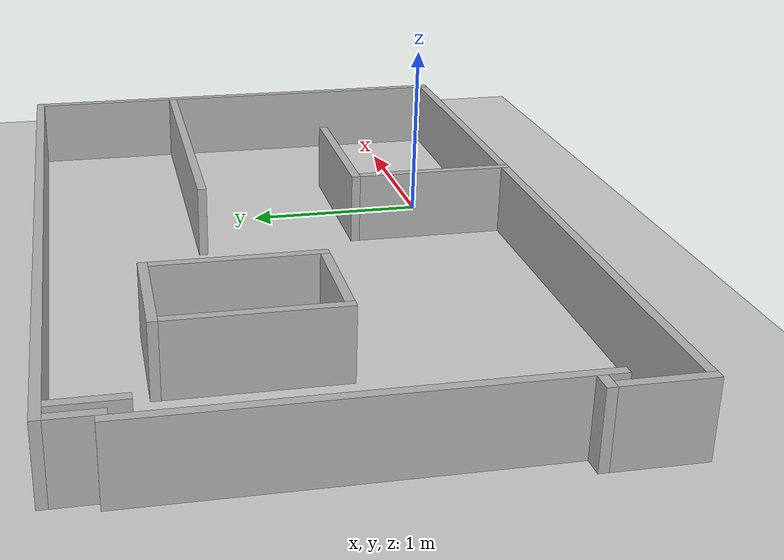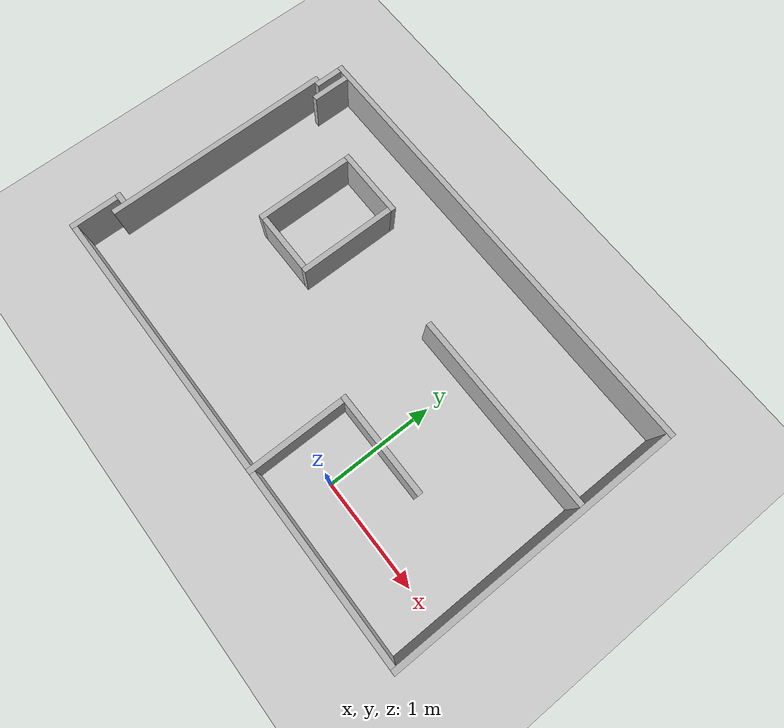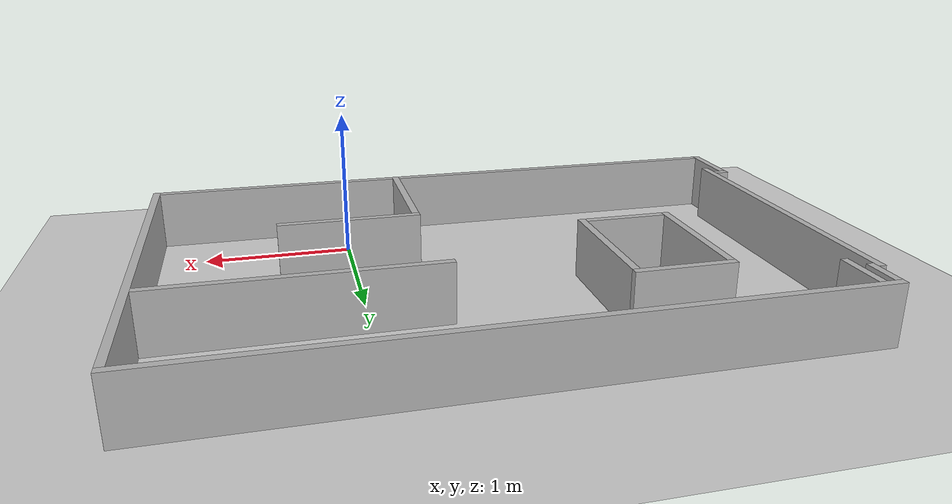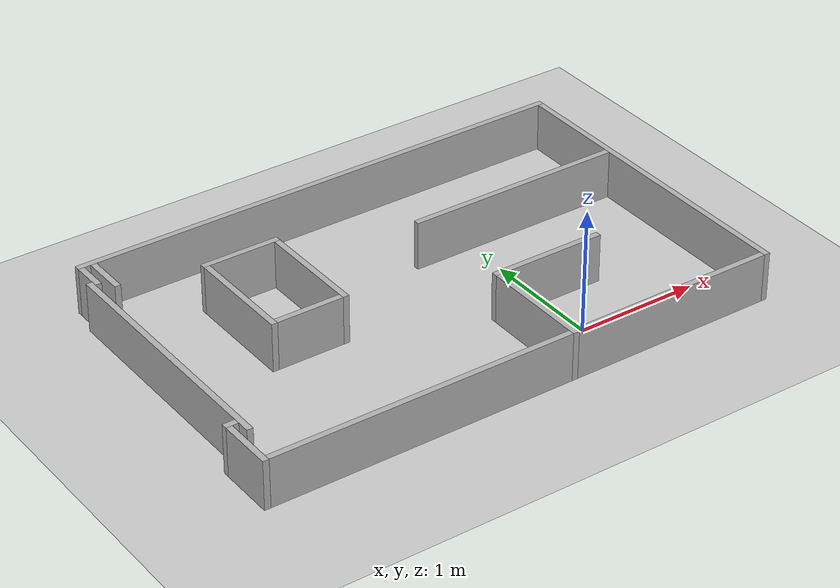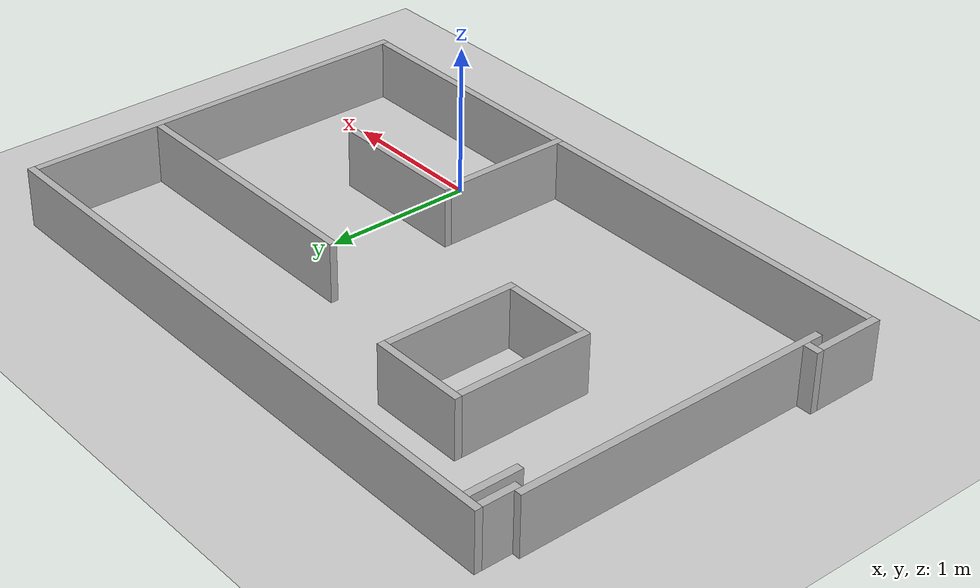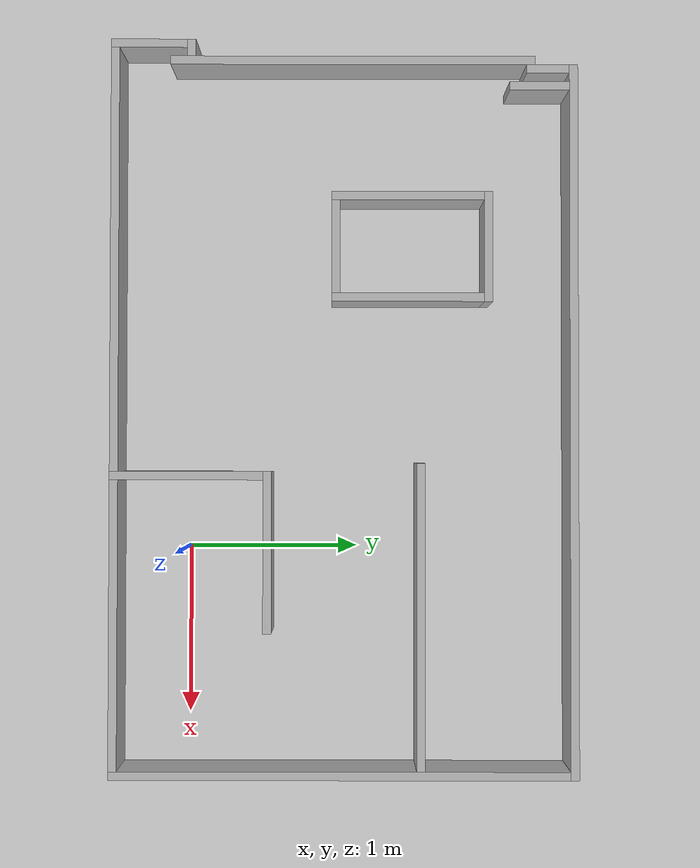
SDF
<?xml version="1.0"?>
<!-- tools/map_to_world.py 로 맵에서 만든 월드: map2_room -->
<sdf version="1.6">
  <world name="map2_room">
    <!-- 모델 위치를 서비스로 바꿀 수 있게 (/set_entity_state): tools/sim_mover.py 로 움직이는 장애물 시험 -->
    <plugin name="gazebo_ros_state" filename="libgazebo_ros_state.so">
      <ros><namespace>/</namespace></ros>
      <update_rate>20.0</update_rate>
    </plugin>
    <include><uri>model://ground_plane</uri></include>
    <include><uri>model://sun</uri></include>
    <scene>
      <shadows>false</shadows>
    </scene>
    <physics type="ode">
      <real_time_update_rate>1000.0</real_time_update_rate>
      <max_step_size>0.001</max_step_size>
      <real_time_factor>1</real_time_factor>
    </physics>
    <model name="walls">
      <static>true</static>
      <link name="link">
        <collision name="c0">
          <pose>-0.750 2.275 0.200 0 0 0</pose>
          <geometry><box><size>4.200 0.050 0.400</size></box></geometry>
        </collision>
        <visual name="v0">
          <pose>-0.750 2.275 0.200 0 0 0</pose>
          <geometry><box><size>4.200 0.050 0.400</size></box></geometry>
          <material><ambient>0.6 0.6 0.6 1</ambient><diffuse>0.7 0.7 0.7 1</diffuse></material>
        </visual>
        <collision name="c1">
          <pose>-2.825 2.125 0.200 0 0 0</pose>
          <geometry><box><size>0.050 0.250 0.400</size></box></geometry>
        </collision>
        <visual name="v1">
          <pose>-2.825 2.125 0.200 0 0 0</pose>
          <geometry><box><size>0.050 0.250 0.400</size></box></geometry>
          <material><ambient>0.6 0.6 0.6 1</ambient><diffuse>0.7 0.7 0.7 1</diffuse></material>
        </visual>
        <collision name="c2">
          <pose>-2.725 2.075 0.200 0 0 0</pose>
          <geometry><box><size>0.050 0.350 0.400</size></box></geometry>
        </collision>
        <visual name="v2">
          <pose>-2.725 2.075 0.200 0 0 0</pose>
          <geometry><box><size>0.050 0.350 0.400</size></box></geometry>
          <material><ambient>0.6 0.6 0.6 1</ambient><diffuse>0.7 0.7 0.7 1</diffuse></material>
        </visual>
        <collision name="c3">
          <pose>1.325 0.900 0.200 0 0 0</pose>
          <geometry><box><size>0.050 2.700 0.400</size></box></geometry>
        </collision>
        <visual name="v3">
          <pose>1.325 0.900 0.200 0 0 0</pose>
          <geometry><box><size>0.050 2.700 0.400</size></box></geometry>
          <material><ambient>0.6 0.6 0.6 1</ambient><diffuse>0.7 0.7 0.7 1</diffuse></material>
        </visual>
        <collision name="c4">
          <pose>-2.875 0.975 0.200 0 0 0</pose>
          <geometry><box><size>0.050 2.150 0.400</size></box></geometry>
        </collision>
        <visual name="v4">
          <pose>-2.875 0.975 0.200 0 0 0</pose>
          <geometry><box><size>0.050 2.150 0.400</size></box></geometry>
          <material><ambient>0.6 0.6 0.6 1</ambient><diffuse>0.7 0.7 0.7 1</diffuse></material>
        </visual>
        <collision name="c5">
          <pose>-1.775 1.775 0.200 0 0 0</pose>
          <geometry><box><size>0.650 0.050 0.400</size></box></geometry>
        </collision>
        <visual name="v5">
          <pose>-1.775 1.775 0.200 0 0 0</pose>
          <geometry><box><size>0.650 0.050 0.400</size></box></geometry>
          <material><ambient>0.6 0.6 0.6 1</ambient><diffuse>0.7 0.7 0.7 1</diffuse></material>
        </visual>
        <collision name="c6">
          <pose>-2.075 1.300 0.200 0 0 0</pose>
          <geometry><box><size>0.050 0.900 0.400</size></box></geometry>
        </collision>
        <visual name="v6">
          <pose>-2.075 1.300 0.200 0 0 0</pose>
          <geometry><box><size>0.050 0.900 0.400</size></box></geometry>
          <material><ambient>0.6 0.6 0.6 1</ambient><diffuse>0.7 0.7 0.7 1</diffuse></material>
        </visual>
        <collision name="c7">
          <pose>-1.475 1.300 0.200 0 0 0</pose>
          <geometry><box><size>0.050 0.900 0.400</size></box></geometry>
        </collision>
        <visual name="v7">
          <pose>-1.475 1.300 0.200 0 0 0</pose>
          <geometry><box><size>0.050 0.900 0.400</size></box></geometry>
          <material><ambient>0.6 0.6 0.6 1</ambient><diffuse>0.7 0.7 0.7 1</diffuse></material>
        </visual>
        <collision name="c8">
          <pose>0.400 1.375 0.200 0 0 0</pose>
          <geometry><box><size>1.800 0.050 0.400</size></box></geometry>
        </collision>
        <visual name="v8">
          <pose>0.400 1.375 0.200 0 0 0</pose>
          <geometry><box><size>1.800 0.050 0.400</size></box></geometry>
          <material><ambient>0.6 0.6 0.6 1</ambient><diffuse>0.7 0.7 0.7 1</diffuse></material>
        </visual>
        <collision name="c9">
          <pose>-1.775 0.875 0.200 0 0 0</pose>
          <geometry><box><size>0.550 0.050 0.400</size></box></geometry>
        </collision>
        <visual name="v9">
          <pose>-1.775 0.875 0.200 0 0 0</pose>
          <geometry><box><size>0.550 0.050 0.400</size></box></geometry>
          <material><ambient>0.6 0.6 0.6 1</ambient><diffuse>0.7 0.7 0.7 1</diffuse></material>
        </visual>
        <collision name="c10">
          <pose>0.025 0.475 0.200 0 0 0</pose>
          <geometry><box><size>0.950 0.050 0.400</size></box></geometry>
        </collision>
        <visual name="v10">
          <pose>0.025 0.475 0.200 0 0 0</pose>
          <geometry><box><size>0.950 0.050 0.400</size></box></geometry>
          <material><ambient>0.6 0.6 0.6 1</ambient><diffuse>0.7 0.7 0.7 1</diffuse></material>
        </visual>
        <collision name="c11">
          <pose>-0.425 0.000 0.200 0 0 0</pose>
          <geometry><box><size>0.050 0.900 0.400</size></box></geometry>
        </collision>
        <visual name="v11">
          <pose>-0.425 0.000 0.200 0 0 0</pose>
          <geometry><box><size>0.050 0.900 0.400</size></box></geometry>
          <material><ambient>0.6 0.6 0.6 1</ambient><diffuse>0.7 0.7 0.7 1</diffuse></material>
        </visual>
        <collision name="c12">
          <pose>-2.950 0.025 0.200 0 0 0</pose>
          <geometry><box><size>0.100 0.050 0.400</size></box></geometry>
        </collision>
        <visual name="v12">
          <pose>-2.950 0.025 0.200 0 0 0</pose>
          <geometry><box><size>0.100 0.050 0.400</size></box></geometry>
          <material><ambient>0.6 0.6 0.6 1</ambient><diffuse>0.7 0.7 0.7 1</diffuse></material>
        </visual>
        <collision name="c13">
          <pose>-2.975 -0.225 0.200 0 0 0</pose>
          <geometry><box><size>0.050 0.450 0.400</size></box></geometry>
        </collision>
        <visual name="v13">
          <pose>-2.975 -0.225 0.200 0 0 0</pose>
          <geometry><box><size>0.050 0.450 0.400</size></box></geometry>
          <material><ambient>0.6 0.6 0.6 1</ambient><diffuse>0.7 0.7 0.7 1</diffuse></material>
        </visual>
        <collision name="c14">
          <pose>-1.700 -0.425 0.200 0 0 0</pose>
          <geometry><box><size>2.500 0.050 0.400</size></box></geometry>
        </collision>
        <visual name="v14">
          <pose>-1.700 -0.425 0.200 0 0 0</pose>
          <geometry><box><size>2.500 0.050 0.400</size></box></geometry>
          <material><ambient>0.6 0.6 0.6 1</ambient><diffuse>0.7 0.7 0.7 1</diffuse></material>
        </visual>
        <collision name="c15">
          <pose>0.450 -0.425 0.200 0 0 0</pose>
          <geometry><box><size>1.700 0.050 0.400</size></box></geometry>
        </collision>
        <visual name="v15">
          <pose>0.450 -0.425 0.200 0 0 0</pose>
          <geometry><box><size>1.700 0.050 0.400</size></box></geometry>
          <material><ambient>0.6 0.6 0.6 1</ambient><diffuse>0.7 0.7 0.7 1</diffuse></material>
        </visual>
      </link>
    </model>
  </world>
</sdf>
